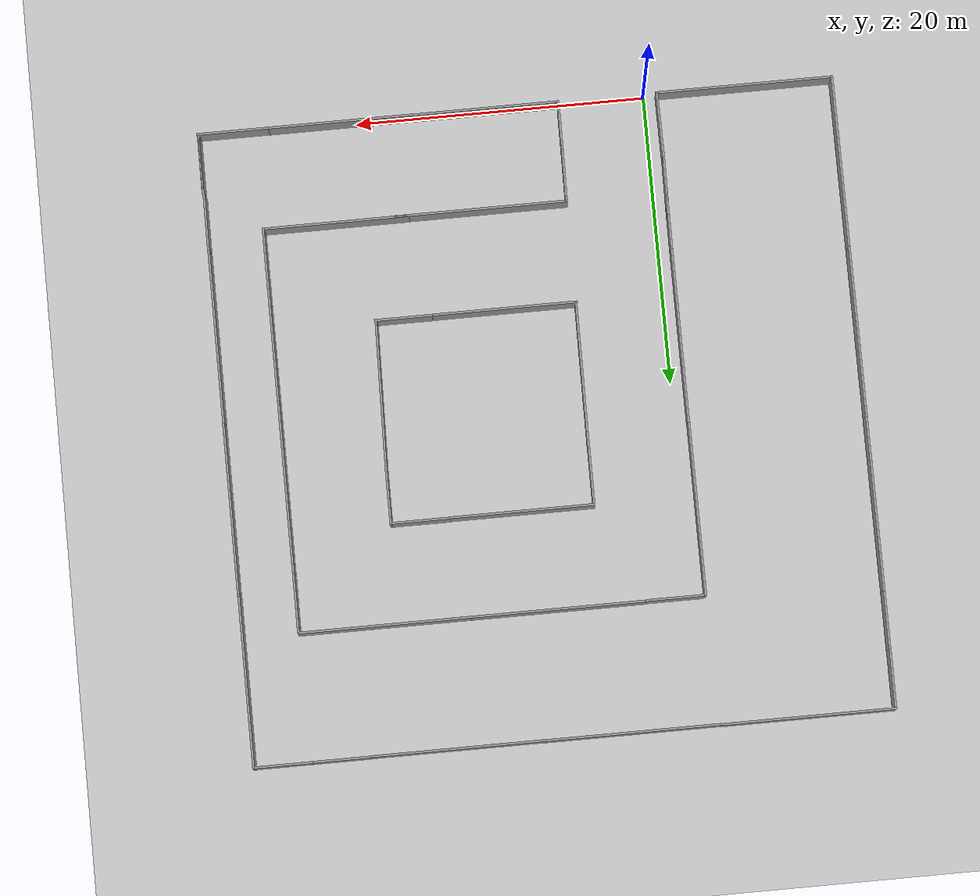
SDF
<sdf version="1.7">
 <world name="default">
  <light name="sun" type="directional">
   <pose>0 0 10 0 -0 0</pose>
   <diffuse>0.8 0.8 0.8 1</diffuse>
   <specular>0.2 0.2 0.2 1</specular>
   <attenuation>
    <range>1000</range>
    <constant>0.9</constant>
    <linear>0.01</linear>
    <quadratic>0.001</quadratic>
   </attenuation>
   <direction>-0.5 0.1 -0.9</direction>
   <spot><inner_angle>0</inner_angle><outer_angle>0</outer_angle><falloff>0</falloff></spot>
  </light>
  <model name="ground_plane">
   <static>1</static>
   <link name="link">
    <collision name="collision">
     <geometry><plane><normal>0 0 1</normal><size>100 100</size></plane></geometry>
     <surface><friction><ode><mu>100</mu><mu2>50</mu2></ode></friction></surface>
    </collision>
    <visual name="visual">
     <cast_shadows>0</cast_shadows>
     <geometry><plane><normal>0 0 1</normal><size>100 100</size></plane></geometry>
     <material>
      <script><uri>file://media/materials/scripts/gazebo.material</uri><name>Gazebo/Grey</name></script>
     </material>
    </visual>
   </link>
  </model>
  <gravity>0 0 -9.8</gravity>
  <magnetic_field>6e-06 2.3e-05 -4.2e-05</magnetic_field>
  <atmosphere type="adiabatic"/>
  <physics type="ode">
   <max_step_size>0.001</max_step_size>
   <real_time_factor>1</real_time_factor>
   <real_time_update_rate>1000</real_time_update_rate>
  </physics>
  <scene><ambient>0.4 0.4 0.4 1</ambient><background>0.7 0.7 0.7 1</background><shadows>1</shadows></scene>
  <spherical_coordinates>
   <surface_model>EARTH_WGS84</surface_model>
   <latitude_deg>0</latitude_deg>
   <longitude_deg>0</longitude_deg>
   <elevation>0</elevation>
   <heading_deg>0</heading_deg>
  </spherical_coordinates>
  <model name="wall_12_meters">
   <pose>-7.00507 5.00245 0 0 -0 0</pose>
   <link name="Wall_14">
    <collision name="Wall_14_Collision">
     <geometry><box><size>12 0.15 2.5</size></box></geometry>
     <pose>0 0 1.25 0 -0 0</pose>
    </collision>
    <visual name="Wall_14_Visual">
     <pose>0 0 1.25 0 -0 0</pose>
     <geometry><box><size>12 0.15 2.5</size></box></geometry>
     <material>
      <script><uri>file://media/materials/scripts/gazebo.material</uri><name>Gazebo/Grey</name></script>
      <ambient>1 1 1 1</ambient>
     </material>
     <meta><layer>0</layer></meta>
    </visual>
    <pose>-0 -4.92556 0 0 -0 0</pose>
   </link>
   <static>1</static>
  </model>
  <model name="Wall">
   <pose>11.0089 2.19732 0 0 -0 0</pose>
   <link name="Wall_10">
    <collision name="Wall_10_Collision">
     <geometry><box><size>10 0.15 2.5</size></box></geometry>
     <pose>0 0 1.25 0 -0 0</pose>
    </collision>
    <visual name="Wall_10_Visual">
     <pose>0 0 1.25 0 -0 0</pose>
     <geometry><box><size>10 0.15 2.5</size></box></geometry>
     <material>
      <script><uri>file://media/materials/scripts/gazebo.material</uri><name>Gazebo/Grey</name></script>
      <ambient>1 1 1 1</ambient>
     </material>
     <meta><layer>0</layer></meta>
    </visual>
    <pose>-0 -2.12715 0 0 -0 0</pose>
   </link>
   <static>1</static>
  </model>
  <model name="Wall_0">
   <pose>21.0046 2.18821 0 0 -0 0</pose>
   <link name="Wall_10">
    <collision name="Wall_10_Collision">
     <geometry><box><size>10 0.15 2.5</size></box></geometry>
     <pose>0 0 1.25 0 -0 0</pose>
    </collision>
    <visual name="Wall_10_Visual">
     <pose>0 0 1.25 0 -0 0</pose>
     <geometry><box><size>10 0.15 2.5</size></box></geometry>
     <material>
      <script><uri>file://media/materials/scripts/gazebo.material</uri><name>Gazebo/Grey</name></script>
      <ambient>1 1 1 1</ambient>
     </material>
     <meta><layer>0</layer></meta>
    </visual>
    <pose>-0 -2.12715 0 0 -0 0</pose>
   </link>
   <static>1</static>
  </model>
  <model name="wall_5_meter_0">
   <pose>28.4709 1.54476 0 0 -0 0</pose>
   <link name="Wall_0">
    <collision name="Wall_0_Collision">
     <geometry><box><size>5 0.15 2.5</size></box></geometry>
     <pose>0 0 1.25 0 -0 0</pose>
    </collision>
    <visual name="Wall_0_Visual">
     <pose>0 0 1.25 0 -0 0</pose>
     <geometry><box><size>5 0.15 2.5</size></box></geometry>
     <material>
      <script><uri>file://media/materials/scripts/gazebo.material</uri><name>Gazebo/Grey</name></script>
      <ambient>1 1 1 1</ambient>
     </material>
     <meta><layer>0</layer></meta>
    </visual>
    <pose>0 -1.4875 0 0 -0 0</pose>
   </link>
   <static>1</static>
  </model>
  <model name="wall_12_meters_0">
   <pose>-8.12294 6.00294 0 0 0 -1.5701</pose>
   <link name="Wall_14">
    <collision name="Wall_14_Collision">
     <geometry><box><size>12 0.15 2.5</size></box></geometry>
     <pose>0 0 1.25 0 -0 0</pose>
    </collision>
    <visual name="Wall_14_Visual">
     <pose>0 0 1.25 0 -0 0</pose>
     <geometry><box><size>12 0.15 2.5</size></box></geometry>
     <material>
      <script><uri>file://media/materials/scripts/gazebo.material</uri><name>Gazebo/Grey</name></script>
      <ambient>1 1 1 1</ambient>
     </material>
     <meta><layer>0</layer></meta>
    </visual>
    <pose>-0 -4.92556 0 0 -0 0</pose>
   </link>
   <static>1</static>
  </model>
  <model name="wall_12_meters_0_clone">
   <pose>-8.13404 17.9899 0 0 0 -1.5701</pose>
   <link name="Wall_14">
    <collision name="Wall_14_Collision">
     <geometry><box><size>12 0.15 2.5</size></box></geometry>
     <pose>0 0 1.25 0 -0 0</pose>
    </collision>
    <visual name="Wall_14_Visual">
     <pose>0 0 1.25 0 -0 0</pose>
     <geometry><box><size>12 0.15 2.5</size></box></geometry>
     <material>
      <script><uri>file://media/materials/scripts/gazebo.material</uri><name>Gazebo/Grey</name></script>
      <ambient>1 1 1 1</ambient>
     </material>
     <meta><layer>0</layer></meta>
    </visual>
    <pose>-0 -4.92556 0 0 -0 0</pose>
   </link>
   <static>1</static>
  </model>
  <model name="wall_12_meters_0_clone_clone">
   <pose>-8.13464 29.7911 0 0 0 -1.5701</pose>
   <link name="Wall_14">
    <collision name="Wall_14_Collision">
     <geometry><box><size>12 0.15 2.5</size></box></geometry>
     <pose>0 0 1.25 0 -0 0</pose>
    </collision>
    <visual name="Wall_14_Visual">
     <pose>0 0 1.25 0 -0 0</pose>
     <geometry><box><size>12 0.15 2.5</size></box></geometry>
     <material>
      <script><uri>file://media/materials/scripts/gazebo.material</uri><name>Gazebo/Grey</name></script>
      <ambient>1 1 1 1</ambient>
     </material>
     <meta><layer>0</layer></meta>
    </visual>
    <pose>-0 -4.92556 0 0 -0 0</pose>
   </link>
   <static>1</static>
  </model>
  <model name="wall_4_meter">
   <pose>-8.72797 35.5576 0 0 0 -1.57328</pose>
   <link name="Wall_12">
    <collision name="Wall_12_Collision">
     <geometry><box><size>4 0.15 2.5</size></box></geometry>
     <pose>0 0 1.25 0 -0 0</pose>
    </collision>
    <visual name="Wall_12_Visual">
     <pose>0 0 1.25 0 -0 0</pose>
     <geometry><box><size>4 0.15 2.5</size></box></geometry>
     <material>
      <script><uri>file://media/materials/scripts/gazebo.material</uri><name>Gazebo/Grey</name></script>
      <ambient>1 1 1 1</ambient>
     </material>
     <meta><layer>0</layer></meta>
    </visual>
    <pose>-2.2142 -4.33964 0 0 -0 0</pose>
   </link>
   <static>1</static>
  </model>
  <model name="wall_4_meter_clone">
   <pose>-8.72717 39.5418 0 0 0 -1.57328</pose>
   <link name="Wall_12">
    <collision name="Wall_12_Collision">
     <geometry><box><size>4 0.15 2.5</size></box></geometry>
     <pose>0 0 1.25 0 -0 0</pose>
    </collision>
    <visual name="Wall_12_Visual">
     <pose>0 0 1.25 0 -0 0</pose>
     <geometry><box><size>4 0.15 2.5</size></box></geometry>
     <material>
      <script><uri>file://media/materials/scripts/gazebo.material</uri><name>Gazebo/Grey</name></script>
      <ambient>1 1 1 1</ambient>
     </material>
     <meta><layer>0</layer></meta>
    </visual>
    <pose>-2.2142 -4.33964 0 0 -0 0</pose>
   </link>
   <static>1</static>
  </model>
  <model name="wall_12_meters_clone">
   <pose>-7.14507 48.7593 0 0 -0 0</pose>
   <link name="Wall_14">
    <collision name="Wall_14_Collision">
     <geometry><box><size>12 0.15 2.5</size></box></geometry>
     <pose>0 0 1.25 0 -0 0</pose>
    </collision>
    <visual name="Wall_14_Visual">
     <pose>0 0 1.25 0 -0 0</pose>
     <geometry><box><size>12 0.15 2.5</size></box></geometry>
     <material>
      <script><uri>file://media/materials/scripts/gazebo.material</uri><name>Gazebo/Grey</name></script>
      <ambient>1 1 1 1</ambient>
     </material>
     <meta><layer>0</layer></meta>
    </visual>
    <pose>-0 -4.92556 0 0 -0 0</pose>
   </link>
   <static>1</static>
  </model>
  <model name="wall_12_meters_clone_clone">
   <pose>4.85172 48.7372 0 0 -0 0</pose>
   <link name="Wall_14">
    <collision name="Wall_14_Collision">
     <geometry><box><size>12 0.15 2.5</size></box></geometry>
     <pose>0 0 1.25 0 -0 0</pose>
    </collision>
    <visual name="Wall_14_Visual">
     <pose>0 0 1.25 0 -0 0</pose>
     <geometry><box><size>12 0.15 2.5</size></box></geometry>
     <material>
      <script><uri>file://media/materials/scripts/gazebo.material</uri><name>Gazebo/Grey</name></script>
      <ambient>1 1 1 1</ambient>
     </material>
     <meta><layer>0</layer></meta>
    </visual>
    <pose>-0 -4.92556 0 0 -0 0</pose>
   </link>
   <static>1</static>
  </model>
  <model name="wall_12_meters_clone_clone_clone">
   <pose>16.8039 48.7239 0 0 -0 0</pose>
   <link name="Wall_14">
    <collision name="Wall_14_Collision">
     <geometry><box><size>12 0.15 2.5</size></box></geometry>
     <pose>0 0 1.25 0 -0 0</pose>
    </collision>
    <visual name="Wall_14_Visual">
     <pose>0 0 1.25 0 -0 0</pose>
     <geometry><box><size>12 0.15 2.5</size></box></geometry>
     <material>
      <script><uri>file://media/materials/scripts/gazebo.material</uri><name>Gazebo/Grey</name></script>
      <ambient>1 1 1 1</ambient>
     </material>
     <meta><layer>0</layer></meta>
    </visual>
    <pose>-0 -4.92556 0 0 -0 0</pose>
   </link>
   <static>1</static>
  </model>
  <model name="wall_4_meter_0">
   <pose>26.9261 48.1555 0 0 -0 0</pose>
   <link name="Wall_12">
    <collision name="Wall_12_Collision">
     <geometry><box><size>4 0.15 2.5</size></box></geometry>
     <pose>0 0 1.25 0 -0 0</pose>
    </collision>
    <visual name="Wall_12_Visual">
     <pose>0 0 1.25 0 -0 0</pose>
     <geometry><box><size>4 0.15 2.5</size></box></geometry>
     <material>
      <script><uri>file://media/materials/scripts/gazebo.material</uri><name>Gazebo/Grey</name></script>
      <ambient>1 1 1 1</ambient>
     </material>
     <meta><layer>0</layer></meta>
    </visual>
    <pose>-2.2142 -4.33964 0 0 -0 0</pose>
   </link>
   <static>1</static>
  </model>
  <model name="wall_4_meter_1">
   <pose>30.9196 48.158 0 0 -0 0</pose>
   <link name="Wall_12">
    <collision name="Wall_12_Collision">
     <geometry><box><size>4 0.15 2.5</size></box></geometry>
     <pose>0 0 1.25 0 -0 0</pose>
    </collision>
    <visual name="Wall_12_Visual">
     <pose>0 0 1.25 0 -0 0</pose>
     <geometry><box><size>4 0.15 2.5</size></box></geometry>
     <material>
      <script><uri>file://media/materials/scripts/gazebo.material</uri><name>Gazebo/Grey</name></script>
      <ambient>1 1 1 1</ambient>
     </material>
     <meta><layer>0</layer></meta>
    </visual>
    <pose>-2.2142 -4.33964 0 0 -0 0</pose>
   </link>
   <static>1</static>
  </model>
  <model name="wall_12_meters_0_clone_0">
   <pose>35.7052 37.9081 0 0 0 -1.5701</pose>
   <link name="Wall_14">
    <collision name="Wall_14_Collision">
     <geometry><box><size>12 0.15 2.5</size></box></geometry>
     <pose>0 0 1.25 0 -0 0</pose>
    </collision>
    <visual name="Wall_14_Visual">
     <pose>0 0 1.25 0 -0 0</pose>
     <geometry><box><size>12 0.15 2.5</size></box></geometry>
     <material>
      <script><uri>file://media/materials/scripts/gazebo.material</uri><name>Gazebo/Grey</name></script>
      <ambient>1 1 1 1</ambient>
     </material>
     <meta><layer>0</layer></meta>
    </visual>
    <pose>-0 -4.92556 0 0 -0 0</pose>
   </link>
   <static>1</static>
  </model>
  <model name="wall_12_meters_0_clone_0_clone">
   <pose>35.7301 26.1361 0 0 0 -1.5701</pose>
   <link name="Wall_14">
    <collision name="Wall_14_Collision">
     <geometry><box><size>12 0.15 2.5</size></box></geometry>
     <pose>0 0 1.25 0 -0 0</pose>
    </collision>
    <visual name="Wall_14_Visual">
     <pose>0 0 1.25 0 -0 0</pose>
     <geometry><box><size>12 0.15 2.5</size></box></geometry>
     <material>
      <script><uri>file://media/materials/scripts/gazebo.material</uri><name>Gazebo/Grey</name></script>
      <ambient>1 1 1 1</ambient>
     </material>
     <meta><layer>0</layer></meta>
    </visual>
    <pose>-0 -4.92556 0 0 -0 0</pose>
   </link>
   <static>1</static>
  </model>
  <model name="wall_12_meters_0_clone_0_clone_clone">
   <pose>35.73 14.1715 0 0 0 -1.5701</pose>
   <link name="Wall_14">
    <collision name="Wall_14_Collision">
     <geometry><box><size>12 0.15 2.5</size></box></geometry>
     <pose>0 0 1.25 0 -0 0</pose>
    </collision>
    <visual name="Wall_14_Visual">
     <pose>0 0 1.25 0 -0 0</pose>
     <geometry><box><size>12 0.15 2.5</size></box></geometry>
     <material>
      <script><uri>file://media/materials/scripts/gazebo.material</uri><name>Gazebo/Grey</name></script>
      <ambient>1 1 1 1</ambient>
     </material>
     <meta><layer>0</layer></meta>
    </visual>
    <pose>-0 -4.92556 0 0 -0 0</pose>
   </link>
   <static>1</static>
  </model>
  <model name="wall_4_meter_clone_clone">
   <pose>35.1473 4.0283 0 0 0 -1.57328</pose>
   <link name="Wall_12">
    <collision name="Wall_12_Collision">
     <geometry><box><size>4 0.15 2.5</size></box></geometry>
     <pose>0 0 1.25 0 -0 0</pose>
    </collision>
    <visual name="Wall_12_Visual">
     <pose>0 0 1.25 0 -0 0</pose>
     <geometry><box><size>4 0.15 2.5</size></box></geometry>
     <material>
      <script><uri>file://media/materials/scripts/gazebo.material</uri><name>Gazebo/Grey</name></script>
      <ambient>1 1 1 1</ambient>
     </material>
     <meta><layer>0</layer></meta>
    </visual>
    <pose>-2.2142 -4.33964 0 0 -0 0</pose>
   </link>
   <static>1</static>
  </model>
  <model name="wall_4_meter_clone_clone_clone">
   <pose>35.1789 0.036559 0 0 0 -1.57328</pose>
   <link name="Wall_12">
    <collision name="Wall_12_Collision">
     <geometry><box><size>4 0.15 2.5</size></box></geometry>
     <pose>0 0 1.25 0 -0 0</pose>
    </collision>
    <visual name="Wall_12_Visual">
     <pose>0 0 1.25 0 -0 0</pose>
     <geometry><box><size>4 0.15 2.5</size></box></geometry>
     <material>
      <script><uri>file://media/materials/scripts/gazebo.material</uri><name>Gazebo/Grey</name></script>
      <ambient>1 1 1 1</ambient>
     </material>
     <meta><layer>0</layer></meta>
    </visual>
    <pose>-2.2142 -4.33964 0 0 -0 0</pose>
   </link>
   <static>1</static>
  </model>
  <model name="wall_4_meter_clone_clone_clone_clone">
   <pose>35.1915 -0.138391 0 0 0 -1.57328</pose>
   <link name="Wall_12">
    <collision name="Wall_12_Collision">
     <geometry><box><size>4 0.15 2.5</size></box></geometry>
     <pose>0 0 1.25 0 -0 0</pose>
    </collision>
    <visual name="Wall_12_Visual">
     <pose>0 0 1.25 0 -0 0</pose>
     <geometry><box><size>4 0.15 2.5</size></box></geometry>
     <material>
      <script><uri>file://media/materials/scripts/gazebo.material</uri><name>Gazebo/Grey</name></script>
      <ambient>1 1 1 1</ambient>
     </material>
     <meta><layer>0</layer></meta>
    </visual>
    <pose>-2.2142 -4.33964 0 0 -0 0</pose>
   </link>
   <static>1</static>
  </model>
  <model name="Wall_1">
   <pose>10.9059 16.1827 0 0 -0 0</pose>
   <link name="Wall_10">
    <collision name="Wall_10_Collision">
     <geometry><box><size>10 0.15 2.5</size></box></geometry>
     <pose>0 0 1.25 0 -0 0</pose>
    </collision>
    <visual name="Wall_10_Visual">
     <pose>0 0 1.25 0 -0 0</pose>
     <geometry><box><size>10 0.15 2.5</size></box></geometry>
     <material>
      <script><uri>file://media/materials/scripts/gazebo.material</uri><name>Gazebo/Grey</name></script>
      <ambient>1 1 1 1</ambient>
     </material>
     <meta><layer>0</layer></meta>
    </visual>
    <pose>-0 -2.12715 0 0 -0 0</pose>
   </link>
   <static>1</static>
  </model>
  <model name="wall_4_meter_2">
   <pose>20.1206 18.4045 0 0 -0 0</pose>
   <link name="Wall_12">
    <collision name="Wall_12_Collision">
     <geometry><box><size>4 0.15 2.5</size></box></geometry>
     <pose>0 0 1.25 0 -0 0</pose>
    </collision>
    <visual name="Wall_12_Visual">
     <pose>0 0 1.25 0 -0 0</pose>
     <geometry><box><size>4 0.15 2.5</size></box></geometry>
     <material>
      <script><uri>file://media/materials/scripts/gazebo.material</uri><name>Gazebo/Grey</name></script>
      <ambient>1 1 1 1</ambient>
     </material>
     <meta><layer>0</layer></meta>
    </visual>
    <pose>-2.2142 -4.33964 0 0 -0 0</pose>
   </link>
   <static>1</static>
  </model>
  <model name="Wall_2">
   <pose>8.1687 19.068 0 0 0 -1.57709</pose>
   <link name="Wall_10">
    <collision name="Wall_10_Collision">
     <geometry><box><size>10 0.15 2.5</size></box></geometry>
     <pose>0 0 1.25 0 -0 0</pose>
    </collision>
    <visual name="Wall_10_Visual">
     <pose>0 0 1.25 0 -0 0</pose>
     <geometry><box><size>10 0.15 2.5</size></box></geometry>
     <material>
      <script><uri>file://media/materials/scripts/gazebo.material</uri><name>Gazebo/Grey</name></script>
      <ambient>1 1 1 1</ambient>
     </material>
     <meta><layer>0</layer></meta>
    </visual>
    <pose>-0 -2.12715 0 0 -0 0</pose>
   </link>
   <static>1</static>
  </model>
  <model name="wall_4_meter_clone_clone_clone_clone_0">
   <pose>10.4055 23.8363 0 0 0 -1.57328</pose>
   <link name="Wall_12">
    <collision name="Wall_12_Collision">
     <geometry><box><size>4 0.15 2.5</size></box></geometry>
     <pose>0 0 1.25 0 -0 0</pose>
    </collision>
    <visual name="Wall_12_Visual">
     <pose>0 0 1.25 0 -0 0</pose>
     <geometry><box><size>4 0.15 2.5</size></box></geometry>
     <material>
      <script><uri>file://media/materials/scripts/gazebo.material</uri><name>Gazebo/Grey</name></script>
      <ambient>1 1 1 1</ambient>
     </material>
     <meta><layer>0</layer></meta>
    </visual>
    <pose>-2.2142 -4.33964 0 0 -0 0</pose>
   </link>
   <static>1</static>
  </model>
  <model name="Wall_1_clone">
   <pose>11.0075 30.202 0 0 -0 0</pose>
   <link name="Wall_10">
    <collision name="Wall_10_Collision">
     <geometry><box><size>10 0.15 2.5</size></box></geometry>
     <pose>0 0 1.25 0 -0 0</pose>
    </collision>
    <visual name="Wall_10_Visual">
     <pose>0 0 1.25 0 -0 0</pose>
     <geometry><box><size>10 0.15 2.5</size></box></geometry>
     <material>
      <script><uri>file://media/materials/scripts/gazebo.material</uri><name>Gazebo/Grey</name></script>
      <ambient>1 1 1 1</ambient>
     </material>
     <meta><layer>0</layer></meta>
    </visual>
    <pose>-0 -2.12715 0 0 -0 0</pose>
   </link>
   <static>1</static>
  </model>
  <model name="wall_4_meter_3_clone">
   <pose>20.1693 32.4317 0 0 -0 0</pose>
   <link name="Wall_12">
    <collision name="Wall_12_Collision">
     <geometry><box><size>4 0.15 2.5</size></box></geometry>
     <pose>0 0 1.25 0 -0 0</pose>
    </collision>
    <visual name="Wall_12_Visual">
     <pose>0 0 1.25 0 -0 0</pose>
     <geometry><box><size>4 0.15 2.5</size></box></geometry>
     <material>
      <script><uri>file://media/materials/scripts/gazebo.material</uri><name>Gazebo/Grey</name></script>
      <ambient>1 1 1 1</ambient>
     </material>
     <meta><layer>0</layer></meta>
    </visual>
    <pose>-2.2142 -4.33964 0 0 -0 0</pose>
   </link>
   <static>1</static>
  </model>
  <model name="wall_4_meter_clone_clone_clone_clone_0_clone_0">
   <pose>24.3443 23.9231 0 0 0 -1.57328</pose>
   <link name="Wall_12">
    <collision name="Wall_12_Collision">
     <geometry><box><size>4 0.15 2.5</size></box></geometry>
     <pose>0 0 1.25 0 -0 0</pose>
    </collision>
    <visual name="Wall_12_Visual">
     <pose>0 0 1.25 0 -0 0</pose>
     <geometry><box><size>4 0.15 2.5</size></box></geometry>
     <material>
      <script><uri>file://media/materials/scripts/gazebo.material</uri><name>Gazebo/Grey</name></script>
      <ambient>1 1 1 1</ambient>
     </material>
     <meta><layer>0</layer></meta>
    </visual>
    <pose>-2.2142 -4.33964 0 0 -0 0</pose>
   </link>
   <static>1</static>
  </model>
  <model name="Wall_2_clone">
   <pose>22.0237 19.0975 0 0 0 -1.59161</pose>
   <link name="Wall_10">
    <collision name="Wall_10_Collision">
     <geometry><box><size>10 0.15 2.5</size></box></geometry>
     <pose>0 0 1.25 0 -0 0</pose>
    </collision>
    <visual name="Wall_10_Visual">
     <pose>0 0 1.25 0 -0 0</pose>
     <geometry><box><size>10 0.15 2.5</size></box></geometry>
     <material>
      <script><uri>file://media/materials/scripts/gazebo.material</uri><name>Gazebo/Grey</name></script>
      <ambient>1 1 1 1</ambient>
     </material>
     <meta><layer>0</layer></meta>
    </visual>
    <pose>-0 -2.12715 0 0 -0 0</pose>
   </link>
   <static>1</static>
  </model>
  <model name="wall_12_meters_1">
   <pose>11.9181 11.9469 0 0 -0 0</pose>
   <link name="Wall_14">
    <collision name="Wall_14_Collision">
     <geometry><box><size>12 0.15 2.5</size></box></geometry>
     <pose>0 0 1.25 0 -0 0</pose>
    </collision>
    <visual name="Wall_14_Visual">
     <pose>0 0 1.25 0 -0 0</pose>
     <geometry><box><size>12 0.15 2.5</size></box></geometry>
     <material>
      <script><uri>file://media/materials/scripts/gazebo.material</uri><name>Gazebo/Grey</name></script>
      <ambient>1 1 1 1</ambient>
     </material>
     <meta><layer>0</layer></meta>
    </visual>
    <pose>-0 -4.92556 0 0 -0 0</pose>
   </link>
   <static>1</static>
  </model>
  <model name="Wall_3">
   <pose>21.8908 9.16568 0 0 -0 0</pose>
   <link name="Wall_10">
    <collision name="Wall_10_Collision">
     <geometry><box><size>10 0.15 2.5</size></box></geometry>
     <pose>0 0 1.25 0 -0 0</pose>
    </collision>
    <visual name="Wall_10_Visual">
     <pose>0 0 1.25 0 -0 0</pose>
     <geometry><box><size>10 0.15 2.5</size></box></geometry>
     <material>
      <script><uri>file://media/materials/scripts/gazebo.material</uri><name>Gazebo/Grey</name></script>
      <ambient>1 1 1 1</ambient>
     </material>
     <meta><layer>0</layer></meta>
    </visual>
    <pose>-0 -2.12715 0 0 -0 0</pose>
   </link>
   <static>1</static>
  </model>
  <model name="wall_12_meters_0_clone_1">
   <pose>31.8775 12.9675 0 0 0 -1.5701</pose>
   <link name="Wall_14">
    <collision name="Wall_14_Collision">
     <geometry><box><size>12 0.15 2.5</size></box></geometry>
     <pose>0 0 1.25 0 -0 0</pose>
    </collision>
    <visual name="Wall_14_Visual">
     <pose>0 0 1.25 0 -0 0</pose>
     <geometry><box><size>12 0.15 2.5</size></box></geometry>
     <material>
      <script><uri>file://media/materials/scripts/gazebo.material</uri><name>Gazebo/Grey</name></script>
      <ambient>1 1 1 1</ambient>
     </material>
     <meta><layer>0</layer></meta>
    </visual>
    <pose>-0 -4.92556 0 0 -0 0</pose>
   </link>
   <static>1</static>
  </model>
  <model name="wall_12_meters_0_clone_1_clone">
   <pose>31.8668 24.9357 0 0 0 -1.5701</pose>
   <link name="Wall_14">
    <collision name="Wall_14_Collision">
     <geometry><box><size>12 0.15 2.5</size></box></geometry>
     <pose>0 0 1.25 0 -0 0</pose>
    </collision>
    <visual name="Wall_14_Visual">
     <pose>0 0 1.25 0 -0 0</pose>
     <geometry><box><size>12 0.15 2.5</size></box></geometry>
     <material>
      <script><uri>file://media/materials/scripts/gazebo.material</uri><name>Gazebo/Grey</name></script>
      <ambient>1 1 1 1</ambient>
     </material>
     <meta><layer>0</layer></meta>
    </visual>
    <pose>-0 -4.92556 0 0 -0 0</pose>
   </link>
   <static>1</static>
  </model>
  <model name="wall_4_meter_clone_clone_clone_clone_1">
   <pose>31.2713 30.7108 0 0 0 -1.57328</pose>
   <link name="Wall_12">
    <collision name="Wall_12_Collision">
     <geometry><box><size>4 0.15 2.5</size></box></geometry>
     <pose>0 0 1.25 0 -0 0</pose>
    </collision>
    <visual name="Wall_12_Visual">
     <pose>0 0 1.25 0 -0 0</pose>
     <geometry><box><size>4 0.15 2.5</size></box></geometry>
     <material>
      <script><uri>file://media/materials/scripts/gazebo.material</uri><name>Gazebo/Grey</name></script>
      <ambient>1 1 1 1</ambient>
     </material>
     <meta><layer>0</layer></meta>
    </visual>
    <pose>-2.2142 -4.33964 0 0 -0 0</pose>
   </link>
   <static>1</static>
  </model>
  <model name="wall_12_meters_clone_clone_clone_clone">
   <pose>20.9917 39.9012 0 0 -0 0</pose>
   <link name="Wall_14">
    <collision name="Wall_14_Collision">
     <geometry><box><size>12 0.15 2.5</size></box></geometry>
     <pose>0 0 1.25 0 -0 0</pose>
    </collision>
    <visual name="Wall_14_Visual">
     <pose>0 0 1.25 0 -0 0</pose>
     <geometry><box><size>12 0.15 2.5</size></box></geometry>
     <material>
      <script><uri>file://media/materials/scripts/gazebo.material</uri><name>Gazebo/Grey</name></script>
      <ambient>1 1 1 1</ambient>
     </material>
     <meta><layer>0</layer></meta>
    </visual>
    <pose>-0 -4.92556 0 0 -0 0</pose>
   </link>
   <static>1</static>
  </model>
  <model name="wall_12_meters_clone_clone_clone_clone_clone">
   <pose>9.1572 39.9043 0 0 -0 0</pose>
   <link name="Wall_14">
    <collision name="Wall_14_Collision">
     <geometry><box><size>12 0.15 2.5</size></box></geometry>
     <pose>0 0 1.25 0 -0 0</pose>
    </collision>
    <visual name="Wall_14_Visual">
     <pose>0 0 1.25 0 -0 0</pose>
     <geometry><box><size>12 0.15 2.5</size></box></geometry>
     <material>
      <script><uri>file://media/materials/scripts/gazebo.material</uri><name>Gazebo/Grey</name></script>
      <ambient>1 1 1 1</ambient>
     </material>
     <meta><layer>0</layer></meta>
    </visual>
    <pose>-0 -4.92556 0 0 -0 0</pose>
   </link>
   <static>1</static>
  </model>
  <model name="wall_4_meter_3">
   <pose>3.38314 39.2941 0 0 -0 0</pose>
   <link name="Wall_12">
    <collision name="Wall_12_Collision">
     <geometry><box><size>4 0.15 2.5</size></box></geometry>
     <pose>0 0 1.25 0 -0 0</pose>
    </collision>
    <visual name="Wall_12_Visual">
     <pose>0 0 1.25 0 -0 0</pose>
     <geometry><box><size>4 0.15 2.5</size></box></geometry>
     <material>
      <script><uri>file://media/materials/scripts/gazebo.material</uri><name>Gazebo/Grey</name></script>
      <ambient>1 1 1 1</ambient>
     </material>
     <meta><layer>0</layer></meta>
    </visual>
    <pose>-2.2142 -4.33964 0 0 -0 0</pose>
   </link>
   <static>1</static>
  </model>
  <model name="wall_12_meters_0_clone_clone_0">
   <pose>4.00354 28.9996 0 0 0 -1.5701</pose>
   <link name="Wall_14">
    <collision name="Wall_14_Collision">
     <geometry><box><size>12 0.15 2.5</size></box></geometry>
     <pose>0 0 1.25 0 -0 0</pose>
    </collision>
    <visual name="Wall_14_Visual">
     <pose>0 0 1.25 0 -0 0</pose>
     <geometry><box><size>12 0.15 2.5</size></box></geometry>
     <material>
      <script><uri>file://media/materials/scripts/gazebo.material</uri><name>Gazebo/Grey</name></script>
      <ambient>1 1 1 1</ambient>
     </material>
     <meta><layer>0</layer></meta>
    </visual>
    <pose>-0 -4.92556 0 0 -0 0</pose>
   </link>
   <static>1</static>
  </model>
  <model name="wall_12_meters_0_clone_clone_0_clone">
   <pose>4.02519 17.027 0 0 0 -1.5701</pose>
   <link name="Wall_14">
    <collision name="Wall_14_Collision">
     <geometry><box><size>12 0.15 2.5</size></box></geometry>
     <pose>0 0 1.25 0 -0 0</pose>
    </collision>
    <visual name="Wall_14_Visual">
     <pose>0 0 1.25 0 -0 0</pose>
     <geometry><box><size>12 0.15 2.5</size></box></geometry>
     <material>
      <script><uri>file://media/materials/scripts/gazebo.material</uri><name>Gazebo/Grey</name></script>
      <ambient>1 1 1 1</ambient>
     </material>
     <meta><layer>0</layer></meta>
    </visual>
    <pose>-0 -4.92556 0 0 -0 0</pose>
   </link>
   <static>1</static>
  </model>
  <model name="wall_4_meter_clone_clone_clone_clone_0_clone">
   <pose>3.43231 6.79906 0 0 0 -1.57328</pose>
   <link name="Wall_12">
    <collision name="Wall_12_Collision">
     <geometry><box><size>4 0.15 2.5</size></box></geometry>
     <pose>0 0 1.25 0 -0 0</pose>
    </collision>
    <visual name="Wall_12_Visual">
     <pose>0 0 1.25 0 -0 0</pose>
     <geometry><box><size>4 0.15 2.5</size></box></geometry>
     <material>
      <script><uri>file://media/materials/scripts/gazebo.material</uri><name>Gazebo/Grey</name></script>
      <ambient>1 1 1 1</ambient>
     </material>
     <meta><layer>0</layer></meta>
    </visual>
    <pose>-2.2142 -4.33964 0 0 -0 0</pose>
   </link>
   <static>1</static>
  </model>
  <model name="wall_5_meters">
   <pose>3.87183 0.353587 0 0 0 -1.56136</pose>
   <link name="Wall_16">
    <collision name="Wall_16_Collision">
     <geometry><box><size>5 0.15 2.5</size></box></geometry>
     <pose>0 0 1.25 0 -0 0</pose>
    </collision>
    <visual name="Wall_16_Visual">
     <pose>0 0 1.25 0 -0 0</pose>
     <geometry><box><size>5 0.15 2.5</size></box></geometry>
     <material>
      <script><uri>file://media/materials/scripts/gazebo.material</uri><name>Gazebo/Grey</name></script>
      <ambient>1 1 1 1</ambient>
     </material>
     <meta><layer>0</layer></meta>
    </visual>
    <pose>-2.18643 -4.77689 0 0 -0 0</pose>
   </link>
   <static>1</static>
  </model>
  <model name="wall_4_meter_4">
   <pose>3.3892 4.32026 0 0 0 -1.58319</pose>
   <link name="Wall_12">
    <collision name="Wall_12_Collision">
     <geometry><box><size>4 0.15 2.5</size></box></geometry>
     <pose>0 0 1.25 0 -0 0</pose>
    </collision>
    <visual name="Wall_12_Visual">
     <pose>0 0 1.25 0 -0 0</pose>
     <geometry><box><size>4 0.15 2.5</size></box></geometry>
     <material>
      <script><uri>file://media/materials/scripts/gazebo.material</uri><name>Gazebo/Grey</name></script>
      <ambient>1 1 1 1</ambient>
     </material>
     <meta><layer>0</layer></meta>
    </visual>
    <pose>-2.2142 -4.33964 0 0 -0 0</pose>
   </link>
   <static>1</static>
  </model>
  <model name="wall_5_meters_0">
   <pose>1.18961 4.7302 0 0 -0 1.56262</pose>
   <link name="Wall_16">
    <collision name="Wall_16_Collision">
     <geometry><box><size>5 0.15 2.5</size></box></geometry>
     <pose>0 0 1.25 0 -0 0</pose>
    </collision>
    <visual name="Wall_16_Visual">
     <pose>0 0 1.25 0 -0 0</pose>
     <geometry><box><size>5 0.15 2.5</size></box></geometry>
     <material>
      <script><uri>file://media/materials/scripts/gazebo.material</uri><name>Gazebo/Grey</name></script>
      <ambient>1 1 1 1</ambient>
     </material>
     <meta><layer>0</layer></meta>
    </visual>
    <pose>-2.18643 -4.77689 0 0 -0 0</pose>
   </link>
   <static>1</static>
  </model>
  <model name="wall_4_meter_4_clone">
   <pose>10.2848 2.8067 0 0 0 -1.58319</pose>
   <link name="Wall_12">
    <collision name="Wall_12_Collision">
     <geometry><box><size>4 0.15 2.5</size></box></geometry>
     <pose>0 0 1.25 0 -0 0</pose>
    </collision>
    <visual name="Wall_12_Visual">
     <pose>0 0 1.25 0 -0 0</pose>
     <geometry><box><size>4 0.15 2.5</size></box></geometry>
     <material>
      <script><uri>file://media/materials/scripts/gazebo.material</uri><name>Gazebo/Grey</name></script>
      <ambient>1 1 1 1</ambient>
     </material>
     <meta><layer>0</layer></meta>
    </visual>
    <pose>-2.2142 -4.33964 0 0 -0 0</pose>
   </link>
   <static>1</static>
  </model>
 </world>
</sdf>
